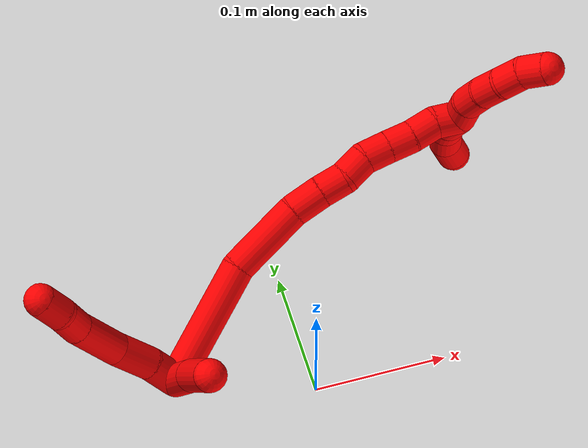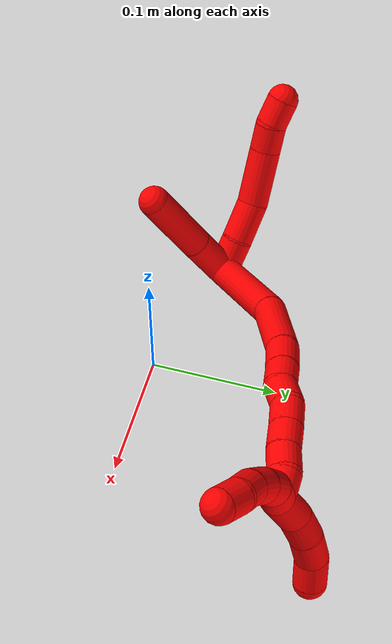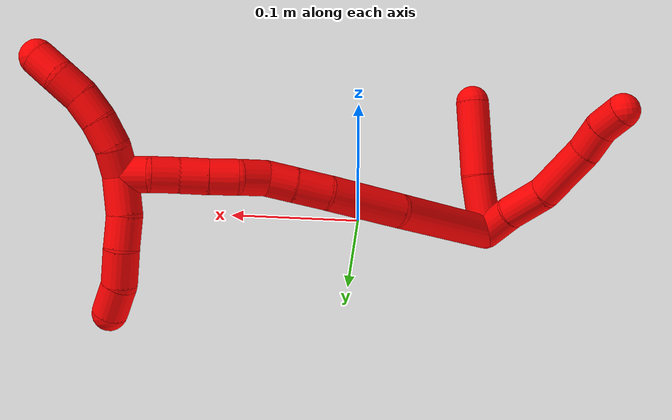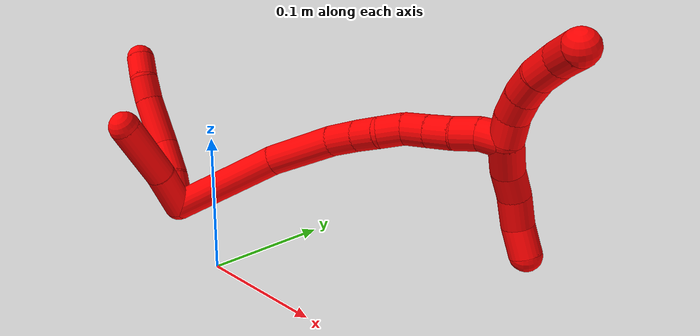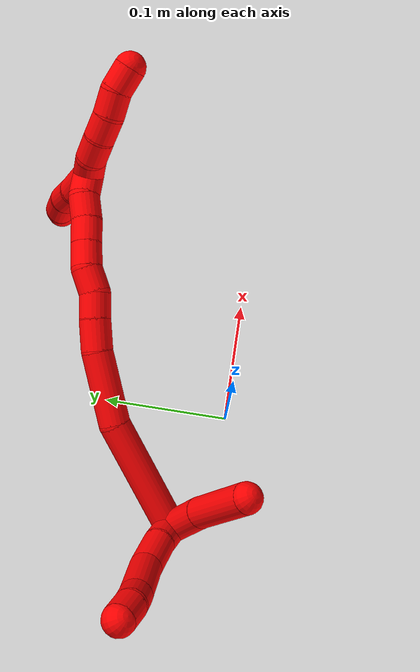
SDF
<sdf version="1.7">
 <world name="default">
  <model name="2">
   <static>0</static>
   <link name="2">
    <collision name="collision-cylinder-e_1_2_8">
     <pose>-0.009098 0.009151 0.005649 -1.01776 -0.702137 0.403096</pose>
     <geometry><cylinder><radius>0.0125</radius><length>0.028173</length></cylinder></geometry>
     <surface>
      <friction><ode><mu>1.16</mu><mu2>1.16</mu2><slip1>0</slip1><slip2>0</slip2></ode></friction>
      <contact><ode><kp>1e+06</kp><kd>1</kd><max_vel>0</max_vel><min_depth>0.001</min_depth></ode></contact>
     </surface>
    </collision>
    <visual name="visual-cylinder-e_1_2_8">
     <pose>-0.009098 0.009151 0.005649 -1.01776 -0.702137 0.403096</pose>
     <geometry><cylinder><radius>0.0125</radius><length>0.028173</length></cylinder></geometry>
     <material><ambient>1 0 0 1</ambient></material>
    </visual>
    <collision name="collision-cylinder-e_2_8_9">
     <pose>-0.030376 0.027633 0.016666 -1.04871 -0.847033 0.510091</pose>
     <geometry><cylinder><radius>0.0125</radius><length>0.03251</length></cylinder></geometry>
     <surface>
      <friction><ode><mu>1.16</mu><mu2>1.16</mu2><slip1>0</slip1><slip2>0</slip2></ode></friction>
      <contact><ode><kp>1e+06</kp><kd>1</kd><max_vel>0</max_vel><min_depth>0.001</min_depth></ode></contact>
     </surface>
    </collision>
    <visual name="visual-cylinder-e_2_8_9">
     <pose>-0.030376 0.027633 0.016666 -1.04871 -0.847033 0.510091</pose>
     <geometry><cylinder><radius>0.0125</radius><length>0.03251</length></cylinder></geometry>
     <material><ambient>1 0 0 1</ambient></material>
    </visual>
    <collision name="collision-cylinder-e_3_9_10">
     <pose>-0.057338 0.048867 0.03454 -0.7607 -0.708073 0.29343</pose>
     <geometry><cylinder><radius>0.0125</radius><length>0.045459</length></cylinder></geometry>
     <surface>
      <friction><ode><mu>1.16</mu><mu2>1.16</mu2><slip1>0</slip1><slip2>0</slip2></ode></friction>
      <contact><ode><kp>1e+06</kp><kd>1</kd><max_vel>0</max_vel><min_depth>0.001</min_depth></ode></contact>
     </surface>
    </collision>
    <visual name="visual-cylinder-e_3_9_10">
     <pose>-0.057338 0.048867 0.03454 -0.7607 -0.708073 0.29343</pose>
     <geometry><cylinder><radius>0.0125</radius><length>0.045459</length></cylinder></geometry>
     <material><ambient>1 0 0 1</ambient></material>
    </visual>
    <collision name="collision-cylinder-e_4_10_11">
     <pose>-0.077959 0.067089 0.053975 -0.739479 -0.556888 0.220686</pose>
     <geometry><cylinder><radius>0.0125</radius><length>0.022093</length></cylinder></geometry>
     <surface>
      <friction><ode><mu>1.16</mu><mu2>1.16</mu2><slip1>0</slip1><slip2>0</slip2></ode></friction>
      <contact><ode><kp>1e+06</kp><kd>1</kd><max_vel>0</max_vel><min_depth>0.001</min_depth></ode></contact>
     </surface>
    </collision>
    <visual name="visual-cylinder-e_4_10_11">
     <pose>-0.077959 0.067089 0.053975 -0.739479 -0.556888 0.220686</pose>
     <geometry><cylinder><radius>0.0125</radius><length>0.022093</length></cylinder></geometry>
     <material><ambient>1 0 0 1</ambient></material>
    </visual>
    <collision name="collision-cylinder-e_5_11_6">
     <pose>-0.090735 0.080612 0.065195 -1.03341 -0.691201 0.403588</pose>
     <geometry><cylinder><radius>0.0125</radius><length>0.021766</length></cylinder></geometry>
     <surface>
      <friction><ode><mu>1.16</mu><mu2>1.16</mu2><slip1>0</slip1><slip2>0</slip2></ode></friction>
      <contact><ode><kp>1e+06</kp><kd>1</kd><max_vel>0</max_vel><min_depth>0.001</min_depth></ode></contact>
     </surface>
    </collision>
    <visual name="visual-cylinder-e_5_11_6">
     <pose>-0.090735 0.080612 0.065195 -1.03341 -0.691201 0.403588</pose>
     <geometry><cylinder><radius>0.0125</radius><length>0.021766</length></cylinder></geometry>
     <material><ambient>1 0 0 1</ambient></material>
    </visual>
    <collision name="collision-cylinder-e_1_2_12">
     <pose>2.5e-05 0.000365 0.021582 -0.016927 0.001144 -1e-05</pose>
     <geometry><cylinder><radius>0.0125</radius><length>0.043171</length></cylinder></geometry>
     <surface>
      <friction><ode><mu>1.16</mu><mu2>1.16</mu2><slip1>0</slip1><slip2>0</slip2></ode></friction>
      <contact><ode><kp>1e+06</kp><kd>1</kd><max_vel>0</max_vel><min_depth>0.001</min_depth></ode></contact>
     </surface>
    </collision>
    <visual name="visual-cylinder-e_1_2_12">
     <pose>2.5e-05 0.000365 0.021582 -0.016927 0.001144 -1e-05</pose>
     <geometry><cylinder><radius>0.0125</radius><length>0.043171</length></cylinder></geometry>
     <material><ambient>1 0 0 1</ambient></material>
    </visual>
    <collision name="collision-cylinder-e_2_12_5">
     <pose>-0.002258 -0.000511 0.071458 0.043873 -0.081292 -0.001785</pose>
     <geometry><cylinder><radius>0.0125</radius><length>0.056829</length></cylinder></geometry>
     <surface>
      <friction><ode><mu>1.16</mu><mu2>1.16</mu2><slip1>0</slip1><slip2>0</slip2></ode></friction>
      <contact><ode><kp>1e+06</kp><kd>1</kd><max_vel>0</max_vel><min_depth>0.001</min_depth></ode></contact>
     </surface>
    </collision>
    <visual name="visual-cylinder-e_2_12_5">
     <pose>-0.002258 -0.000511 0.071458 0.043873 -0.081292 -0.001785</pose>
     <geometry><cylinder><radius>0.0125</radius><length>0.056829</length></cylinder></geometry>
     <material><ambient>1 0 0 1</ambient></material>
    </visual>
    <collision name="collision-cylinder-e_1_2_13">
     <pose>0.03344 0.032523 0.011043 -1.24346 0.772024 -0.56672</pose>
     <geometry><cylinder><radius>0.0125</radius><length>0.095873</length></cylinder></geometry>
     <surface>
      <friction><ode><mu>1.16</mu><mu2>1.16</mu2><slip1>0</slip1><slip2>0</slip2></ode></friction>
      <contact><ode><kp>1e+06</kp><kd>1</kd><max_vel>0</max_vel><min_depth>0.001</min_depth></ode></contact>
     </surface>
    </collision>
    <visual name="visual-cylinder-e_1_2_13">
     <pose>0.03344 0.032523 0.011043 -1.24346 0.772024 -0.56672</pose>
     <geometry><cylinder><radius>0.0125</radius><length>0.095873</length></cylinder></geometry>
     <material><ambient>1 0 0 1</ambient></material>
    </visual>
    <collision name="collision-cylinder-e_2_13_14">
     <pose>0.091281 0.078274 0.03097 -0.979391 0.992287 -0.561773</pose>
     <geometry><cylinder><radius>0.0125</radius><length>0.058286</length></cylinder></geometry>
     <surface>
      <friction><ode><mu>1.16</mu><mu2>1.16</mu2><slip1>0</slip1><slip2>0</slip2></ode></friction>
      <contact><ode><kp>1e+06</kp><kd>1</kd><max_vel>0</max_vel><min_depth>0.001</min_depth></ode></contact>
     </surface>
    </collision>
    <visual name="visual-cylinder-e_2_13_14">
     <pose>0.091281 0.078274 0.03097 -0.979391 0.992287 -0.561773</pose>
     <geometry><cylinder><radius>0.0125</radius><length>0.058286</length></cylinder></geometry>
     <material><ambient>1 0 0 1</ambient></material>
    </visual>
    <collision name="collision-cylinder-e_3_14_15">
     <pose>0.127003 0.094993 0.043971 -0.703336 1.12588 -0.455072</pose>
     <geometry><cylinder><radius>0.0125</radius><length>0.025084</length></cylinder></geometry>
     <surface>
      <friction><ode><mu>1.16</mu><mu2>1.16</mu2><slip1>0</slip1><slip2>0</slip2></ode></friction>
      <contact><ode><kp>1e+06</kp><kd>1</kd><max_vel>0</max_vel><min_depth>0.001</min_depth></ode></contact>
     </surface>
    </collision>
    <visual name="visual-cylinder-e_3_14_15">
     <pose>0.127003 0.094993 0.043971 -0.703336 1.12588 -0.455072</pose>
     <geometry><cylinder><radius>0.0125</radius><length>0.025084</length></cylinder></geometry>
     <material><ambient>1 0 0 1</ambient></material>
    </visual>
    <collision name="collision-cylinder-e_4_15_16">
     <pose>0.147636 0.100587 0.051513 -0.550635 1.16337 -0.367335</pose>
     <geometry><cylinder><radius>0.0125</radius><length>0.020285</length></cylinder></geometry>
     <surface>
      <friction><ode><mu>1.16</mu><mu2>1.16</mu2><slip1>0</slip1><slip2>0</slip2></ode></friction>
      <contact><ode><kp>1e+06</kp><kd>1</kd><max_vel>0</max_vel><min_depth>0.001</min_depth></ode></contact>
     </surface>
    </collision>
    <visual name="visual-cylinder-e_4_15_16">
     <pose>0.147636 0.100587 0.051513 -0.550635 1.16337 -0.367335</pose>
     <geometry><cylinder><radius>0.0125</radius><length>0.020285</length></cylinder></geometry>
     <material><ambient>1 0 0 1</ambient></material>
    </visual>
    <collision name="collision-cylinder-e_5_16_17">
     <pose>0.165941 0.107235 0.056157 -1.30876 1.08875 -0.869563</pose>
     <geometry><cylinder><radius>0.0125</radius><length>0.020299</length></cylinder></geometry>
     <surface>
      <friction><ode><mu>1.16</mu><mu2>1.16</mu2><slip1>0</slip1><slip2>0</slip2></ode></friction>
      <contact><ode><kp>1e+06</kp><kd>1</kd><max_vel>0</max_vel><min_depth>0.001</min_depth></ode></contact>
     </surface>
    </collision>
    <visual name="visual-cylinder-e_5_16_17">
     <pose>0.165941 0.107235 0.056157 -1.30876 1.08875 -0.869563</pose>
     <geometry><cylinder><radius>0.0125</radius><length>0.020299</length></cylinder></geometry>
     <material><ambient>1 0 0 1</ambient></material>
    </visual>
    <collision name="collision-cylinder-e_6_17_18">
     <pose>0.184815 0.112983 0.058775 -0.710421 1.38615 -0.597702</pose>
     <geometry><cylinder><radius>0.0125</radius><length>0.020104</length></cylinder></geometry>
     <surface>
      <friction><ode><mu>1.16</mu><mu2>1.16</mu2><slip1>0</slip1><slip2>0</slip2></ode></friction>
      <contact><ode><kp>1e+06</kp><kd>1</kd><max_vel>0</max_vel><min_depth>0.001</min_depth></ode></contact>
     </surface>
    </collision>
    <visual name="visual-cylinder-e_6_17_18">
     <pose>0.184815 0.112983 0.058775 -0.710421 1.38615 -0.597702</pose>
     <geometry><cylinder><radius>0.0125</radius><length>0.020104</length></cylinder></geometry>
     <material><ambient>1 0 0 1</ambient></material>
    </visual>
    <collision name="collision-cylinder-e_7_18_19">
     <pose>0.204521 0.115134 0.061926 -0.495794 1.37079 -0.408126</pose>
     <geometry><cylinder><radius>0.0125</radius><length>0.020051</length></cylinder></geometry>
     <surface>
      <friction><ode><mu>1.16</mu><mu2>1.16</mu2><slip1>0</slip1><slip2>0</slip2></ode></friction>
      <contact><ode><kp>1e+06</kp><kd>1</kd><max_vel>0</max_vel><min_depth>0.001</min_depth></ode></contact>
     </surface>
    </collision>
    <visual name="visual-cylinder-e_7_18_19">
     <pose>0.204521 0.115134 0.061926 -0.495794 1.37079 -0.408126</pose>
     <geometry><cylinder><radius>0.0125</radius><length>0.020051</length></cylinder></geometry>
     <material><ambient>1 0 0 1</ambient></material>
    </visual>
    <collision name="collision-cylinder-e_8_19_20">
     <pose>0.224001 0.118293 0.0651 -0.999422 1.30492 -0.790386</pose>
     <geometry><cylinder><radius>0.0125</radius><length>0.020012</length></cylinder></geometry>
     <surface>
      <friction><ode><mu>1.16</mu><mu2>1.16</mu2><slip1>0</slip1><slip2>0</slip2></ode></friction>
      <contact><ode><kp>1e+06</kp><kd>1</kd><max_vel>0</max_vel><min_depth>0.001</min_depth></ode></contact>
     </surface>
    </collision>
    <visual name="visual-cylinder-e_8_19_20">
     <pose>0.224001 0.118293 0.0651 -0.999422 1.30492 -0.790386</pose>
     <geometry><cylinder><radius>0.0125</radius><length>0.020012</length></cylinder></geometry>
     <material><ambient>1 0 0 1</ambient></material>
    </visual>
    <collision name="collision-cylinder-e_9_20_1">
     <pose>0.243503 0.11952 0.067978 0.594714 1.39413 0.502321</pose>
     <geometry><cylinder><radius>0.0125</radius><length>0.020007</length></cylinder></geometry>
     <surface>
      <friction><ode><mu>1.16</mu><mu2>1.16</mu2><slip1>0</slip1><slip2>0</slip2></ode></friction>
      <contact><ode><kp>1e+06</kp><kd>1</kd><max_vel>0</max_vel><min_depth>0.001</min_depth></ode></contact>
     </surface>
    </collision>
    <visual name="visual-cylinder-e_9_20_1">
     <pose>0.243503 0.11952 0.067978 0.594714 1.39413 0.502321</pose>
     <geometry><cylinder><radius>0.0125</radius><length>0.020007</length></cylinder></geometry>
     <material><ambient>1 0 0 1</ambient></material>
    </visual>
    <collision name="collision-cylinder-e_1_1_21">
     <pose>0.253813 0.11735 0.05556 3.0564 0.033196 0.742723</pose>
     <geometry><cylinder><radius>0.0125</radius><length>0.027864</length></cylinder></geometry>
     <surface>
      <friction><ode><mu>1.16</mu><mu2>1.16</mu2><slip1>0</slip1><slip2>0</slip2></ode></friction>
      <contact><ode><kp>1e+06</kp><kd>1</kd><max_vel>0</max_vel><min_depth>0.001</min_depth></ode></contact>
     </surface>
    </collision>
    <visual name="visual-cylinder-e_1_1_21">
     <pose>0.253813 0.11735 0.05556 3.0564 0.033196 0.742723</pose>
     <geometry><cylinder><radius>0.0125</radius><length>0.027864</length></cylinder></geometry>
     <material><ambient>1 0 0 1</ambient></material>
    </visual>
    <collision name="collision-cylinder-e_2_21_22">
     <pose>0.256935 0.114589 0.030797 2.99785 0.237192 2.05455</pose>
     <geometry><cylinder><radius>0.0125</radius><length>0.02264</length></cylinder></geometry>
     <surface>
      <friction><ode><mu>1.16</mu><mu2>1.16</mu2><slip1>0</slip1><slip2>0</slip2></ode></friction>
      <contact><ode><kp>1e+06</kp><kd>1</kd><max_vel>0</max_vel><min_depth>0.001</min_depth></ode></contact>
     </surface>
    </collision>
    <visual name="visual-cylinder-e_2_21_22">
     <pose>0.256935 0.114589 0.030797 2.99785 0.237192 2.05455</pose>
     <geometry><cylinder><radius>0.0125</radius><length>0.02264</length></cylinder></geometry>
     <material><ambient>1 0 0 1</ambient></material>
    </visual>
    <collision name="collision-cylinder-e_3_22_23">
     <pose>0.262411 0.108978 0.008019 2.81445 0.220598 1.18203</pose>
     <geometry><cylinder><radius>0.0125</radius><length>0.025731</length></cylinder></geometry>
     <surface>
      <friction><ode><mu>1.16</mu><mu2>1.16</mu2><slip1>0</slip1><slip2>0</slip2></ode></friction>
      <contact><ode><kp>1e+06</kp><kd>1</kd><max_vel>0</max_vel><min_depth>0.001</min_depth></ode></contact>
     </surface>
    </collision>
    <visual name="visual-cylinder-e_3_22_23">
     <pose>0.262411 0.108978 0.008019 2.81445 0.220598 1.18203</pose>
     <geometry><cylinder><radius>0.0125</radius><length>0.025731</length></cylinder></geometry>
     <material><ambient>1 0 0 1</ambient></material>
    </visual>
    <collision name="collision-cylinder-e_4_23_4">
     <pose>0.270463 0.09945 -0.01301 2.60038 0.456453 1.39415</pose>
     <geometry><cylinder><radius>0.0125</radius><length>0.023765</length></cylinder></geometry>
     <surface>
      <friction><ode><mu>1.16</mu><mu2>1.16</mu2><slip1>0</slip1><slip2>0</slip2></ode></friction>
      <contact><ode><kp>1e+06</kp><kd>1</kd><max_vel>0</max_vel><min_depth>0.001</min_depth></ode></contact>
     </surface>
    </collision>
    <visual name="visual-cylinder-e_4_23_4">
     <pose>0.270463 0.09945 -0.01301 2.60038 0.456453 1.39415</pose>
     <geometry><cylinder><radius>0.0125</radius><length>0.023765</length></cylinder></geometry>
     <material><ambient>1 0 0 1</ambient></material>
    </visual>
    <collision name="collision-cylinder-e_1_1_24">
     <pose>0.254306 0.12241 0.078603 -0.399858 0.095678 -0.019402</pose>
     <geometry><cylinder><radius>0.0125</radius><length>0.02</length></cylinder></geometry>
     <surface>
      <friction><ode><mu>1.16</mu><mu2>1.16</mu2><slip1>0</slip1><slip2>0</slip2></ode></friction>
      <contact><ode><kp>1e+06</kp><kd>1</kd><max_vel>0</max_vel><min_depth>0.001</min_depth></ode></contact>
     </surface>
    </collision>
    <visual name="visual-cylinder-e_1_1_24">
     <pose>0.254306 0.12241 0.078603 -0.399858 0.095678 -0.019402</pose>
     <geometry><cylinder><radius>0.0125</radius><length>0.02</length></cylinder></geometry>
     <material><ambient>1 0 0 1</ambient></material>
    </visual>
    <collision name="collision-cylinder-e_2_24_25">
     <pose>0.258544 0.12801 0.097059 -0.183652 0.33444 -0.031085</pose>
     <geometry><cylinder><radius>0.0125</radius><length>0.02</length></cylinder></geometry>
     <surface>
      <friction><ode><mu>1.16</mu><mu2>1.16</mu2><slip1>0</slip1><slip2>0</slip2></ode></friction>
      <contact><ode><kp>1e+06</kp><kd>1</kd><max_vel>0</max_vel><min_depth>0.001</min_depth></ode></contact>
     </surface>
    </collision>
    <visual name="visual-cylinder-e_2_24_25">
     <pose>0.258544 0.12801 0.097059 -0.183652 0.33444 -0.031085</pose>
     <geometry><cylinder><radius>0.0125</radius><length>0.02</length></cylinder></geometry>
     <material><ambient>1 0 0 1</ambient></material>
    </visual>
    <collision name="collision-cylinder-e_3_25_26">
     <pose>0.266541 0.130682 0.115114 -0.10763 0.490936 -0.026988</pose>
     <geometry><cylinder><radius>0.0125</radius><length>0.02</length></cylinder></geometry>
     <surface>
      <friction><ode><mu>1.16</mu><mu2>1.16</mu2><slip1>0</slip1><slip2>0</slip2></ode></friction>
      <contact><ode><kp>1e+06</kp><kd>1</kd><max_vel>0</max_vel><min_depth>0.001</min_depth></ode></contact>
     </surface>
    </collision>
    <visual name="visual-cylinder-e_3_25_26">
     <pose>0.266541 0.130682 0.115114 -0.10763 0.490936 -0.026988</pose>
     <geometry><cylinder><radius>0.0125</radius><length>0.02</length></cylinder></geometry>
     <material><ambient>1 0 0 1</ambient></material>
    </visual>
    <collision name="collision-cylinder-e_4_26_27">
     <pose>0.27769 0.132792 0.131448 -0.152455 0.698996 -0.055657</pose>
     <geometry><cylinder><radius>0.0125</radius><length>0.02</length></cylinder></geometry>
     <surface>
      <friction><ode><mu>1.16</mu><mu2>1.16</mu2><slip1>0</slip1><slip2>0</slip2></ode></friction>
      <contact><ode><kp>1e+06</kp><kd>1</kd><max_vel>0</max_vel><min_depth>0.001</min_depth></ode></contact>
     </surface>
    </collision>
    <visual name="visual-cylinder-e_4_26_27">
     <pose>0.27769 0.132792 0.131448 -0.152455 0.698996 -0.055657</pose>
     <geometry><cylinder><radius>0.0125</radius><length>0.02</length></cylinder></geometry>
     <material><ambient>1 0 0 1</ambient></material>
    </visual>
    <collision name="collision-cylinder-e_5_27_3">
     <pose>0.290548 0.132339 0.146506 0.212357 0.697615 0.077482</pose>
     <geometry><cylinder><radius>0.0125</radius><length>0.02</length></cylinder></geometry>
     <surface>
      <friction><ode><mu>1.16</mu><mu2>1.16</mu2><slip1>0</slip1><slip2>0</slip2></ode></friction>
      <contact><ode><kp>1e+06</kp><kd>1</kd><max_vel>0</max_vel><min_depth>0.001</min_depth></ode></contact>
     </surface>
    </collision>
    <visual name="visual-cylinder-e_5_27_3">
     <pose>0.290548 0.132339 0.146506 0.212357 0.697615 0.077482</pose>
     <geometry><cylinder><radius>0.0125</radius><length>0.02</length></cylinder></geometry>
     <material><ambient>1 0 0 1</ambient></material>
    </visual>
    <collision name="collision-sphere-3">
     <pose>0.296972 0.130724 0.153997 0 -0 0</pose>
     <geometry><sphere><radius>0.0125</radius></sphere></geometry>
     <surface>
      <friction><ode><mu>1.16</mu><mu2>1.16</mu2><slip1>0</slip1><slip2>0</slip2></ode></friction>
      <contact><ode><kp>1e+06</kp><kd>1</kd><max_vel>0</max_vel><min_depth>0.001</min_depth></ode></contact>
     </surface>
    </collision>
    <visual name="visual-sphere-3">
     <pose>0.296972 0.130724 0.153997 0 -0 0</pose>
     <geometry><sphere><radius>0.0125</radius></sphere></geometry>
     <material><ambient>1 0 0 1</ambient></material>
    </visual>
    <collision name="collision-sphere-27">
     <pose>0.284124 0.133954 0.139014 0 -0 0</pose>
     <geometry><sphere><radius>0.0125</radius></sphere></geometry>
     <surface>
      <friction><ode><mu>1.16</mu><mu2>1.16</mu2><slip1>0</slip1><slip2>0</slip2></ode></friction>
      <contact><ode><kp>1e+06</kp><kd>1</kd><max_vel>0</max_vel><min_depth>0.001</min_depth></ode></contact>
     </surface>
    </collision>
    <visual name="visual-sphere-27">
     <pose>0.284124 0.133954 0.139014 0 -0 0</pose>
     <geometry><sphere><radius>0.0125</radius></sphere></geometry>
     <material><ambient>1 0 0 1</ambient></material>
    </visual>
    <collision name="collision-sphere-26">
     <pose>0.271255 0.131629 0.123882 0 -0 0</pose>
     <geometry><sphere><radius>0.0125</radius></sphere></geometry>
     <surface>
      <friction><ode><mu>1.16</mu><mu2>1.16</mu2><slip1>0</slip1><slip2>0</slip2></ode></friction>
      <contact><ode><kp>1e+06</kp><kd>1</kd><max_vel>0</max_vel><min_depth>0.001</min_depth></ode></contact>
     </surface>
    </collision>
    <visual name="visual-sphere-26">
     <pose>0.271255 0.131629 0.123882 0 -0 0</pose>
     <geometry><sphere><radius>0.0125</radius></sphere></geometry>
     <material><ambient>1 0 0 1</ambient></material>
    </visual>
    <collision name="collision-sphere-25">
     <pose>0.261826 0.129735 0.106346 0 -0 0</pose>
     <geometry><sphere><radius>0.0125</radius></sphere></geometry>
     <surface>
      <friction><ode><mu>1.16</mu><mu2>1.16</mu2><slip1>0</slip1><slip2>0</slip2></ode></friction>
      <contact><ode><kp>1e+06</kp><kd>1</kd><max_vel>0</max_vel><min_depth>0.001</min_depth></ode></contact>
     </surface>
    </collision>
    <visual name="visual-sphere-25">
     <pose>0.261826 0.129735 0.106346 0 -0 0</pose>
     <geometry><sphere><radius>0.0125</radius></sphere></geometry>
     <material><ambient>1 0 0 1</ambient></material>
    </visual>
    <collision name="collision-sphere-24">
     <pose>0.255261 0.126285 0.087772 0 -0 0</pose>
     <geometry><sphere><radius>0.0125</radius></sphere></geometry>
     <surface>
      <friction><ode><mu>1.16</mu><mu2>1.16</mu2><slip1>0</slip1><slip2>0</slip2></ode></friction>
      <contact><ode><kp>1e+06</kp><kd>1</kd><max_vel>0</max_vel><min_depth>0.001</min_depth></ode></contact>
     </surface>
    </collision>
    <visual name="visual-sphere-24">
     <pose>0.255261 0.126285 0.087772 0 -0 0</pose>
     <geometry><sphere><radius>0.0125</radius></sphere></geometry>
     <material><ambient>1 0 0 1</ambient></material>
    </visual>
    <collision name="collision-sphere-4">
     <pose>0.275701 0.093955 -0.022152 0 -0 0</pose>
     <geometry><sphere><radius>0.0125</radius></sphere></geometry>
     <surface>
      <friction><ode><mu>1.16</mu><mu2>1.16</mu2><slip1>0</slip1><slip2>0</slip2></ode></friction>
      <contact><ode><kp>1e+06</kp><kd>1</kd><max_vel>0</max_vel><min_depth>0.001</min_depth></ode></contact>
     </surface>
    </collision>
    <visual name="visual-sphere-4">
     <pose>0.275701 0.093955 -0.022152 0 -0 0</pose>
     <geometry><sphere><radius>0.0125</radius></sphere></geometry>
     <material><ambient>1 0 0 1</ambient></material>
    </visual>
    <collision name="collision-sphere-23">
     <pose>0.265226 0.104945 -0.003869 0 -0 0</pose>
     <geometry><sphere><radius>0.0125</radius></sphere></geometry>
     <surface>
      <friction><ode><mu>1.16</mu><mu2>1.16</mu2><slip1>0</slip1><slip2>0</slip2></ode></friction>
      <contact><ode><kp>1e+06</kp><kd>1</kd><max_vel>0</max_vel><min_depth>0.001</min_depth></ode></contact>
     </surface>
    </collision>
    <visual name="visual-sphere-23">
     <pose>0.265226 0.104945 -0.003869 0 -0 0</pose>
     <geometry><sphere><radius>0.0125</radius></sphere></geometry>
     <material><ambient>1 0 0 1</ambient></material>
    </visual>
    <collision name="collision-sphere-22">
     <pose>0.259595 0.113012 0.019907 0 -0 0</pose>
     <geometry><sphere><radius>0.0125</radius></sphere></geometry>
     <surface>
      <friction><ode><mu>1.16</mu><mu2>1.16</mu2><slip1>0</slip1><slip2>0</slip2></ode></friction>
      <contact><ode><kp>1e+06</kp><kd>1</kd><max_vel>0</max_vel><min_depth>0.001</min_depth></ode></contact>
     </surface>
    </collision>
    <visual name="visual-sphere-22">
     <pose>0.259595 0.113012 0.019907 0 -0 0</pose>
     <geometry><sphere><radius>0.0125</radius></sphere></geometry>
     <material><ambient>1 0 0 1</ambient></material>
    </visual>
    <collision name="collision-sphere-21">
     <pose>0.254276 0.116165 0.041686 0 -0 0</pose>
     <geometry><sphere><radius>0.0125</radius></sphere></geometry>
     <surface>
      <friction><ode><mu>1.16</mu><mu2>1.16</mu2><slip1>0</slip1><slip2>0</slip2></ode></friction>
      <contact><ode><kp>1e+06</kp><kd>1</kd><max_vel>0</max_vel><min_depth>0.001</min_depth></ode></contact>
     </surface>
    </collision>
    <visual name="visual-sphere-21">
     <pose>0.254276 0.116165 0.041686 0 -0 0</pose>
     <geometry><sphere><radius>0.0125</radius></sphere></geometry>
     <material><ambient>1 0 0 1</ambient></material>
    </visual>
    <collision name="collision-sphere-1">
     <pose>0.253351 0.118535 0.069434 0 -0 0</pose>
     <geometry><sphere><radius>0.0125</radius></sphere></geometry>
     <surface>
      <friction><ode><mu>1.16</mu><mu2>1.16</mu2><slip1>0</slip1><slip2>0</slip2></ode></friction>
      <contact><ode><kp>1e+06</kp><kd>1</kd><max_vel>0</max_vel><min_depth>0.001</min_depth></ode></contact>
     </surface>
    </collision>
    <visual name="visual-sphere-1">
     <pose>0.253351 0.118535 0.069434 0 -0 0</pose>
     <geometry><sphere><radius>0.0125</radius></sphere></geometry>
     <material><ambient>1 0 0 1</ambient></material>
    </visual>
    <collision name="collision-sphere-6">
     <pose>-0.097673 0.087815 0.069488 0 -0 0</pose>
     <geometry><sphere><radius>0.0125</radius></sphere></geometry>
     <surface>
      <friction><ode><mu>1.16</mu><mu2>1.16</mu2><slip1>0</slip1><slip2>0</slip2></ode></friction>
      <contact><ode><kp>1e+06</kp><kd>1</kd><max_vel>0</max_vel><min_depth>0.001</min_depth></ode></contact>
     </surface>
    </collision>
    <visual name="visual-sphere-6">
     <pose>-0.097673 0.087815 0.069488 0 -0 0</pose>
     <geometry><sphere><radius>0.0125</radius></sphere></geometry>
     <material><ambient>1 0 0 1</ambient></material>
    </visual>
    <collision name="collision-sphere-11">
     <pose>-0.083798 0.073409 0.060903 0 -0 0</pose>
     <geometry><sphere><radius>0.0125</radius></sphere></geometry>
     <surface>
      <friction><ode><mu>1.16</mu><mu2>1.16</mu2><slip1>0</slip1><slip2>0</slip2></ode></friction>
      <contact><ode><kp>1e+06</kp><kd>1</kd><max_vel>0</max_vel><min_depth>0.001</min_depth></ode></contact>
     </surface>
    </collision>
    <visual name="visual-sphere-11">
     <pose>-0.083798 0.073409 0.060903 0 -0 0</pose>
     <geometry><sphere><radius>0.0125</radius></sphere></geometry>
     <material><ambient>1 0 0 1</ambient></material>
    </visual>
    <collision name="collision-sphere-10">
     <pose>-0.072121 0.06077 0.047047 0 -0 0</pose>
     <geometry><sphere><radius>0.0125</radius></sphere></geometry>
     <surface>
      <friction><ode><mu>1.16</mu><mu2>1.16</mu2><slip1>0</slip1><slip2>0</slip2></ode></friction>
      <contact><ode><kp>1e+06</kp><kd>1</kd><max_vel>0</max_vel><min_depth>0.001</min_depth></ode></contact>
     </surface>
    </collision>
    <visual name="visual-sphere-10">
     <pose>-0.072121 0.06077 0.047047 0 -0 0</pose>
     <geometry><sphere><radius>0.0125</radius></sphere></geometry>
     <material><ambient>1 0 0 1</ambient></material>
    </visual>
    <collision name="collision-sphere-9">
     <pose>-0.042556 0.036963 0.022034 0 -0 0</pose>
     <geometry><sphere><radius>0.0125</radius></sphere></geometry>
     <surface>
      <friction><ode><mu>1.16</mu><mu2>1.16</mu2><slip1>0</slip1><slip2>0</slip2></ode></friction>
      <contact><ode><kp>1e+06</kp><kd>1</kd><max_vel>0</max_vel><min_depth>0.001</min_depth></ode></contact>
     </surface>
    </collision>
    <visual name="visual-sphere-9">
     <pose>-0.042556 0.036963 0.022034 0 -0 0</pose>
     <geometry><sphere><radius>0.0125</radius></sphere></geometry>
     <material><ambient>1 0 0 1</ambient></material>
    </visual>
    <collision name="collision-sphere-2">
     <geometry><sphere><radius>0.0125</radius></sphere></geometry>
     <surface>
      <friction><ode><mu>1.16</mu><mu2>1.16</mu2><slip1>0</slip1><slip2>0</slip2></ode></friction>
      <contact><ode><kp>1e+06</kp><kd>1</kd><max_vel>0</max_vel><min_depth>0.001</min_depth></ode></contact>
     </surface>
    </collision>
    <visual name="visual-sphere-2">
     <geometry><sphere><radius>0.0125</radius></sphere></geometry>
     <material><ambient>1 0 0 1</ambient></material>
    </visual>
    <collision name="collision-sphere-19">
     <pose>0.214346 0.116081 0.063678 0 -0 0</pose>
     <geometry><sphere><radius>0.0125</radius></sphere></geometry>
     <surface>
      <friction><ode><mu>1.16</mu><mu2>1.16</mu2><slip1>0</slip1><slip2>0</slip2></ode></friction>
      <contact><ode><kp>1e+06</kp><kd>1</kd><max_vel>0</max_vel><min_depth>0.001</min_depth></ode></contact>
     </surface>
    </collision>
    <visual name="visual-sphere-19">
     <pose>0.214346 0.116081 0.063678 0 -0 0</pose>
     <geometry><sphere><radius>0.0125</radius></sphere></geometry>
     <material><ambient>1 0 0 1</ambient></material>
    </visual>
    <collision name="collision-sphere-8">
     <pose>-0.018196 0.018303 0.011298 0 -0 0</pose>
     <geometry><sphere><radius>0.0125</radius></sphere></geometry>
     <surface>
      <friction><ode><mu>1.16</mu><mu2>1.16</mu2><slip1>0</slip1><slip2>0</slip2></ode></friction>
      <contact><ode><kp>1e+06</kp><kd>1</kd><max_vel>0</max_vel><min_depth>0.001</min_depth></ode></contact>
     </surface>
    </collision>
    <visual name="visual-sphere-8">
     <pose>-0.018196 0.018303 0.011298 0 -0 0</pose>
     <geometry><sphere><radius>0.0125</radius></sphere></geometry>
     <material><ambient>1 0 0 1</ambient></material>
    </visual>
    <collision name="collision-sphere-12">
     <pose>4.9e-05 0.000731 0.043165 0 -0 0</pose>
     <geometry><sphere><radius>0.0125</radius></sphere></geometry>
     <surface>
      <friction><ode><mu>1.16</mu><mu2>1.16</mu2><slip1>0</slip1><slip2>0</slip2></ode></friction>
      <contact><ode><kp>1e+06</kp><kd>1</kd><max_vel>0</max_vel><min_depth>0.001</min_depth></ode></contact>
     </surface>
    </collision>
    <visual name="visual-sphere-12">
     <pose>4.9e-05 0.000731 0.043165 0 -0 0</pose>
     <geometry><sphere><radius>0.0125</radius></sphere></geometry>
     <material><ambient>1 0 0 1</ambient></material>
    </visual>
    <collision name="collision-sphere-5">
     <pose>-0.004565 -0.001754 0.099752 0 -0 0</pose>
     <geometry><sphere><radius>0.0125</radius></sphere></geometry>
     <surface>
      <friction><ode><mu>1.16</mu><mu2>1.16</mu2><slip1>0</slip1><slip2>0</slip2></ode></friction>
      <contact><ode><kp>1e+06</kp><kd>1</kd><max_vel>0</max_vel><min_depth>0.001</min_depth></ode></contact>
     </surface>
    </collision>
    <visual name="visual-sphere-5">
     <pose>-0.004565 -0.001754 0.099752 0 -0 0</pose>
     <geometry><sphere><radius>0.0125</radius></sphere></geometry>
     <material><ambient>1 0 0 1</ambient></material>
    </visual>
    <collision name="collision-sphere-13">
     <pose>0.06688 0.065046 0.022086 0 -0 0</pose>
     <geometry><sphere><radius>0.0125</radius></sphere></geometry>
     <surface>
      <friction><ode><mu>1.16</mu><mu2>1.16</mu2><slip1>0</slip1><slip2>0</slip2></ode></friction>
      <contact><ode><kp>1e+06</kp><kd>1</kd><max_vel>0</max_vel><min_depth>0.001</min_depth></ode></contact>
     </surface>
    </collision>
    <visual name="visual-sphere-13">
     <pose>0.06688 0.065046 0.022086 0 -0 0</pose>
     <geometry><sphere><radius>0.0125</radius></sphere></geometry>
     <material><ambient>1 0 0 1</ambient></material>
    </visual>
    <collision name="collision-sphere-14">
     <pose>0.115682 0.091502 0.039855 0 -0 0</pose>
     <geometry><sphere><radius>0.0125</radius></sphere></geometry>
     <surface>
      <friction><ode><mu>1.16</mu><mu2>1.16</mu2><slip1>0</slip1><slip2>0</slip2></ode></friction>
      <contact><ode><kp>1e+06</kp><kd>1</kd><max_vel>0</max_vel><min_depth>0.001</min_depth></ode></contact>
     </surface>
    </collision>
    <visual name="visual-sphere-14">
     <pose>0.115682 0.091502 0.039855 0 -0 0</pose>
     <geometry><sphere><radius>0.0125</radius></sphere></geometry>
     <material><ambient>1 0 0 1</ambient></material>
    </visual>
    <collision name="collision-sphere-15">
     <pose>0.138323 0.098485 0.048088 0 -0 0</pose>
     <geometry><sphere><radius>0.0125</radius></sphere></geometry>
     <surface>
      <friction><ode><mu>1.16</mu><mu2>1.16</mu2><slip1>0</slip1><slip2>0</slip2></ode></friction>
      <contact><ode><kp>1e+06</kp><kd>1</kd><max_vel>0</max_vel><min_depth>0.001</min_depth></ode></contact>
     </surface>
    </collision>
    <visual name="visual-sphere-15">
     <pose>0.138323 0.098485 0.048088 0 -0 0</pose>
     <geometry><sphere><radius>0.0125</radius></sphere></geometry>
     <material><ambient>1 0 0 1</ambient></material>
    </visual>
    <collision name="collision-sphere-16">
     <pose>0.156948 0.10269 0.054938 0 -0 0</pose>
     <geometry><sphere><radius>0.0125</radius></sphere></geometry>
     <surface>
      <friction><ode><mu>1.16</mu><mu2>1.16</mu2><slip1>0</slip1><slip2>0</slip2></ode></friction>
      <contact><ode><kp>1e+06</kp><kd>1</kd><max_vel>0</max_vel><min_depth>0.001</min_depth></ode></contact>
     </surface>
    </collision>
    <visual name="visual-sphere-16">
     <pose>0.156948 0.10269 0.054938 0 -0 0</pose>
     <geometry><sphere><radius>0.0125</radius></sphere></geometry>
     <material><ambient>1 0 0 1</ambient></material>
    </visual>
    <collision name="collision-sphere-17">
     <pose>0.174934 0.111779 0.057376 0 -0 0</pose>
     <geometry><sphere><radius>0.0125</radius></sphere></geometry>
     <surface>
      <friction><ode><mu>1.16</mu><mu2>1.16</mu2><slip1>0</slip1><slip2>0</slip2></ode></friction>
      <contact><ode><kp>1e+06</kp><kd>1</kd><max_vel>0</max_vel><min_depth>0.001</min_depth></ode></contact>
     </surface>
    </collision>
    <visual name="visual-sphere-17">
     <pose>0.174934 0.111779 0.057376 0 -0 0</pose>
     <geometry><sphere><radius>0.0125</radius></sphere></geometry>
     <material><ambient>1 0 0 1</ambient></material>
    </visual>
    <collision name="collision-sphere-18">
     <pose>0.194696 0.114186 0.060174 0 -0 0</pose>
     <geometry><sphere><radius>0.0125</radius></sphere></geometry>
     <surface>
      <friction><ode><mu>1.16</mu><mu2>1.16</mu2><slip1>0</slip1><slip2>0</slip2></ode></friction>
      <contact><ode><kp>1e+06</kp><kd>1</kd><max_vel>0</max_vel><min_depth>0.001</min_depth></ode></contact>
     </surface>
    </collision>
    <visual name="visual-sphere-18">
     <pose>0.194696 0.114186 0.060174 0 -0 0</pose>
     <geometry><sphere><radius>0.0125</radius></sphere></geometry>
     <material><ambient>1 0 0 1</ambient></material>
    </visual>
    <collision name="collision-sphere-20">
     <pose>0.233656 0.120505 0.066521 0 -0 0</pose>
     <geometry><sphere><radius>0.0125</radius></sphere></geometry>
     <surface>
      <friction><ode><mu>1.16</mu><mu2>1.16</mu2><slip1>0</slip1><slip2>0</slip2></ode></friction>
      <contact><ode><kp>1e+06</kp><kd>1</kd><max_vel>0</max_vel><min_depth>0.001</min_depth></ode></contact>
     </surface>
    </collision>
    <visual name="visual-sphere-20">
     <pose>0.233656 0.120505 0.066521 0 -0 0</pose>
     <geometry><sphere><radius>0.0125</radius></sphere></geometry>
     <material><ambient>1 0 0 1</ambient></material>
    </visual>
    <inertial>
     <pose>0.107457 0.072235 0.046173 0 -0 0</pose>
     <mass>0.75</mass>
     <inertia>
      <ixx>0.0001</ixx>
      <ixy>0</ixy>
      <ixz>0</ixz>
      <iyy>0.000112</iyy>
      <iyz>0</iyz>
      <izz>-0.000125</izz>
     </inertia>
    </inertial>
   </link>
   <pose>-0.099287 0.030419 0.01149 0.552232 0.109918 0.165014</pose>
  </model>
 </world>
</sdf>
